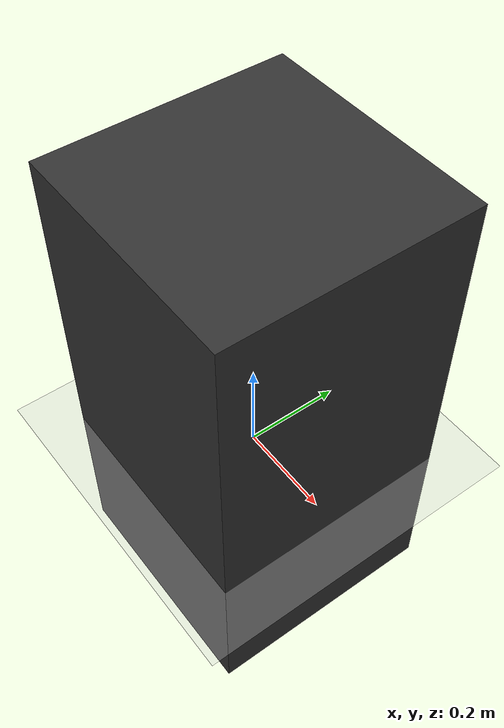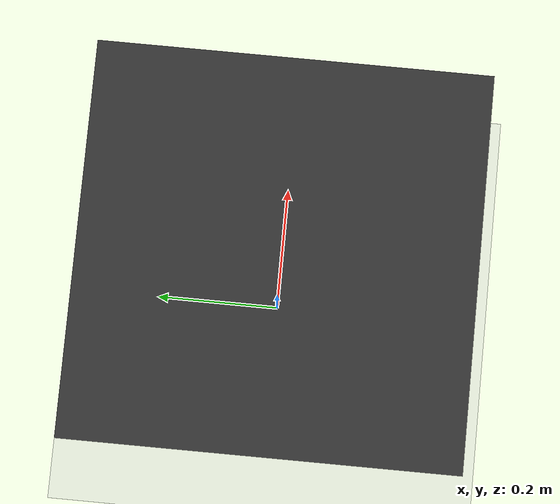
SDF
<?xml version="1.0" ?>
<sdf version="1.7">
    <world name="default">
        <!-- Physics -->
        <plugin
            filename="libignition-gazebo-physics-system.so"
            name="ignition::gazebo::systems::Physics"></plugin>
        <!-- Forwards simulation state to the GUI -->
        <plugin
            filename="libignition-gazebo-scene-broadcaster-system.so"
            name="ignition::gazebo::systems::SceneBroadcaster"></plugin>
        <!-- Processes user commands, like translate and create -->
        <plugin
            filename="libignition-gazebo-user-commands-system.so"
            name="ignition::gazebo::systems::UserCommands"></plugin>
        <!-- Generates rendering sensor data -->
        <plugin
            filename="libignition-gazebo-sensors-system.so"
            name="ignition::gazebo::systems::Sensors">
            <!-- ogre2 not working with just the MESA_GL_VERSION_OVERRIDE=3.3 trick -->
            <render_engine>ogre2</render_engine>
        </plugin>
        <plugin filename="libignition-gazebo-imu-system.so"
        		name="ignition::gazebo::systems::Imu"></plugin>
        <!-- light-->
        <light type="directional" name="sun">
            <cast_shadows>true</cast_shadows>
            <pose>0 0 10 0 0 0</pose>
            <diffuse>0.8 0.8 0.8 1</diffuse>
            <specular>0.2 0.2 0.2 1</specular>
            <attenuation>
                <range>1000</range>
                <constant>0.3</constant>
                <linear>0.01</linear>
                <quadratic>0.001</quadratic>
            </attenuation>
            <direction>-0.5 0.1 -0.9</direction>
        </light>
        <!--ground_plane-->
        <model name="ground_plane">
            <static>true</static>
            <link name="link">
                <collision name="collision">
                    <geometry>
                        <plane>
                            <normal>0 0 1</normal>
                        </plane>
                    </geometry>
                </collision>
                <visual name="visual">
                    <geometry>
                        <plane>
                            <normal>0 0 1</normal>
                            <size>100 100</size>
                        </plane>
                    </geometry>
                    <material>
                        <ambient>0.8 0.8 0.8 1</ambient>
                        <diffuse>0.8 0.8 0.8 1</diffuse>
                        <specular>0.8 0.8 0.8 1</specular>
                    </material>
                </visual>
            </link>
        </model>
        <!--box-->
        <model name="test_box">
            <pose>0 0 0.15 0 0 0</pose>
            <link name="link">
                <pose>0 0 0 0 0 0</pose>
                <collision name="collision">
                    <geometry>
                        <box>
                            <size>0.5 0.5 1.0</size>
                        </box>
                    </geometry>
                </collision>
                <visual name="visual">
                    <geometry>
                        <box>
                            <size>0.5 0.5 1.0</size>
                        </box>
                    </geometry>
                    <material>
                        <ambient>0.2 0.2 0.2 1</ambient>
                        <diffuse>0.2 0.2 0.2 1</diffuse>
                        <specular>0.2 0.2 0.2 1</specular>
                    </material>
                </visual>
            </link>
            <!--plugin for shooter-->
            <plugin filename="ProjectileShooter" name="ignition::gazebo::systems::ProjectileShooter">
                <shooter_link>link</shooter_link>
                <shooter_offset>0.27 0 0 0 0 0</shooter_offset>
                <shooter_name>small_shooter</shooter_name>
                <projectile_velocity>20</projectile_velocity>
                <projectile_uri>model://rm_projectile_17mm</projectile_uri>
            </plugin>
        </model>
    </world>
</sdf>
